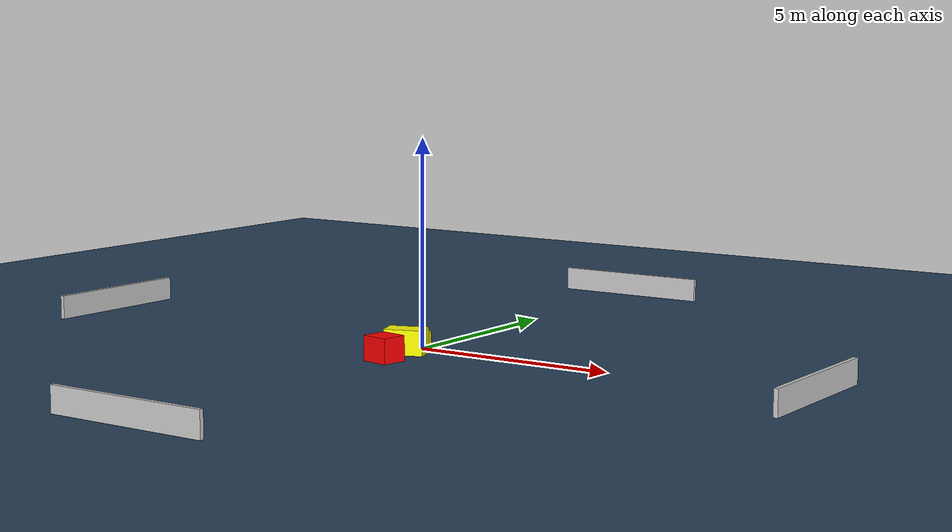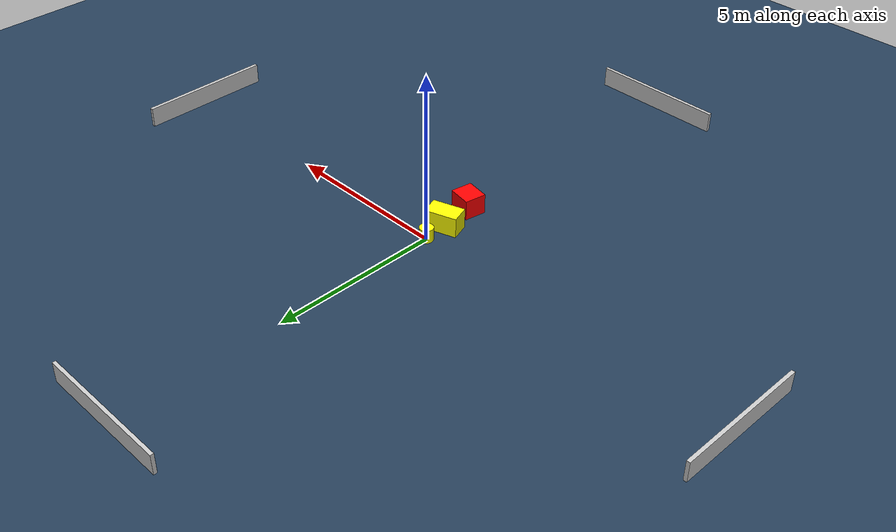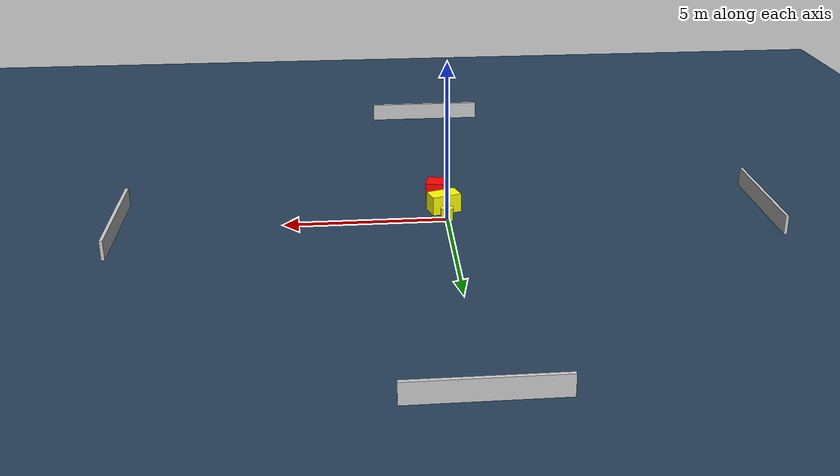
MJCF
<?xml version="1.0" ?>
<mujoco model="generated_environment">
  <option timestep="0.01" integrator="RK4" cone="elliptic"/>
  <default>
    <geom density="1"/>
  </default>
  <asset>
    <texture builtin="gradient" height="3072" name="skybox" rgb1="0.3 0.5 0.7" rgb2="0 0 0" type="skybox" width="512"/>
    <texture builtin="checker" height="300" name="groundplane" rgb1="0.2 0.3 0.4" rgb2="0.1 0.2 0.3" type="2d" width="300"/>
    <material name="groundplane" reflectance="0.2" texrepeat="5 5" texture="groundplane"/>
  </asset>
  <worldbody>
    <light dir="0 0 -1" directional="true" pos="0 0 1.5"/>
    <geom condim="3" friction="0.5 0.005 0.001" material="groundplane" name="floor" pos="0 0 0" size="0 0 0.05" type="plane"/>
    <body name="walls">
      <geom name="wall_1" condim="4" pos="-10.0 0.0 0.3" rgba="0.800000011920929 0.800000011920929 0.800000011920929 1.0" size="0.05 2.0 0.3" type="box"/>
      <geom name="wall_2" condim="4" pos="10.0 0.0 0.3" rgba="0.800000011920929 0.800000011920929 0.800000011920929 1.0" size="0.05 2.0 0.3" type="box"/>
      <geom name="wall_3" condim="4" pos="0.0 -10.0 0.3" rgba="0.800000011920929 0.800000011920929 0.800000011920929 1.0" size="2.0 0.05 0.3" type="box"/>
      <geom name="wall_4" condim="4" pos="0.0 10.0 0.3" rgba="0.800000011920929 0.800000011920929 0.800000011920929 1.0" size="2.0 0.05 0.3" type="box"/>
    </body>
    <body name="robot">
      <joint name="joint_x" type="slide" pos="0 0 0" axis="1 0 0"/>
      <joint name="joint_y" type="slide" pos="0 0 0" axis="0 1 0"/>
      <geom name="robot" type="cylinder" pos="0.0 0.0 0.2" size="0.2 0.2 0.0" mass="5.0" friction="1.0 0.005 0.0001" condim="4" rgba="1.0 1.0 0.0 1.0"/>
    </body>
    <body name="obstacle_1_movable">
      <geom name="obstacle_1_movable" condim="4" pos="0.03686535669387137 -0.7196743346455071 0.3" euler="0 0 108.37340395524211" friction="0.0 0.005 0.001" rgba="1.0 1.0 0.0 1.0" size="0.2782579766644948 0.4730113043662385 0.3" type="box" mass="0.1"/>
      <joint type="free"/>
    </body>
    <body name="obstacle_2_static">
      <geom name="obstacle_2_static" condim="4" pos="0.1600594109239959 -1.7574279085854783 0.3" euler="0 0 260.20568010805596" friction="0.0 0.005 0.001" rgba="1.0 0.0 0.0 1.0" size="0.3177251820729001 0.3430060302256419 0.3" type="box"/>
    </body>
  </worldbody>
  <actuator>
    <motor name="actuator_x" joint="joint_x" gear="1" ctrlrange="-1 1"/>
    <motor name="actuator_y" joint="joint_y" gear="1" ctrlrange="-1 1"/>
  </actuator>
</mujoco>
